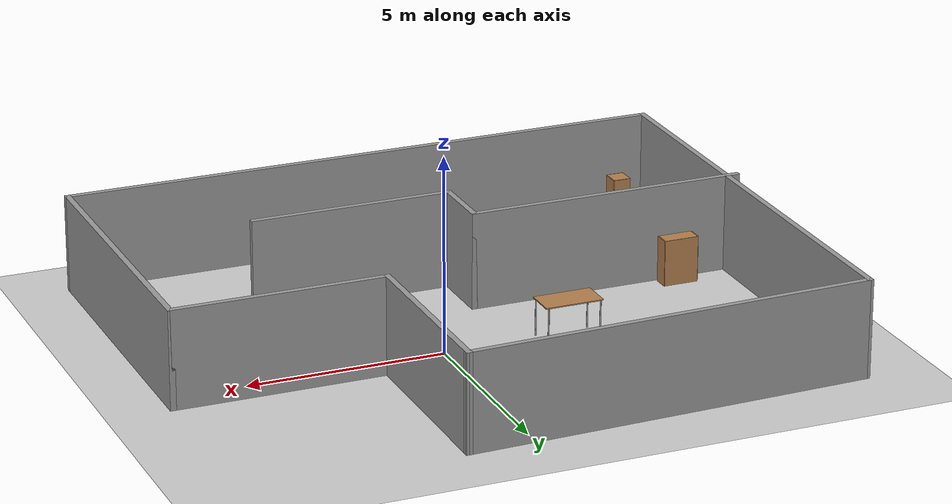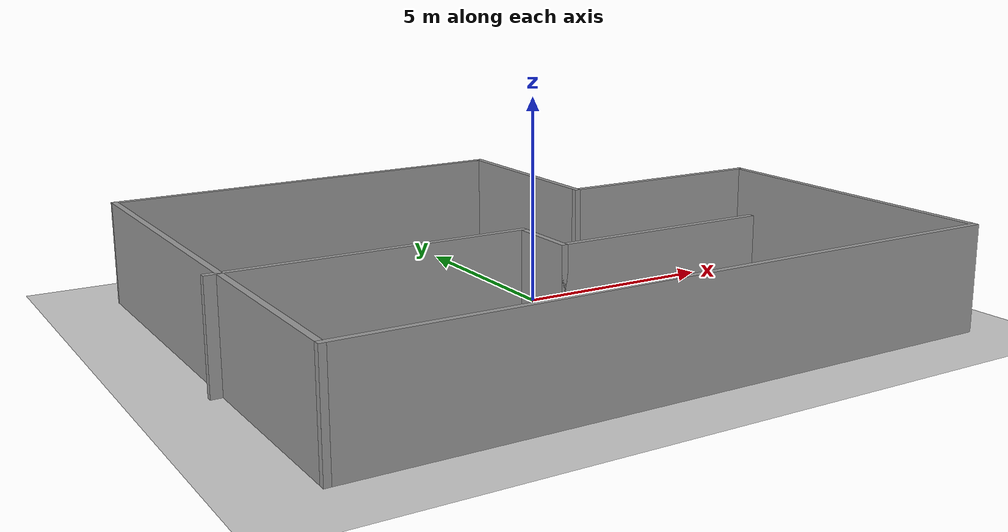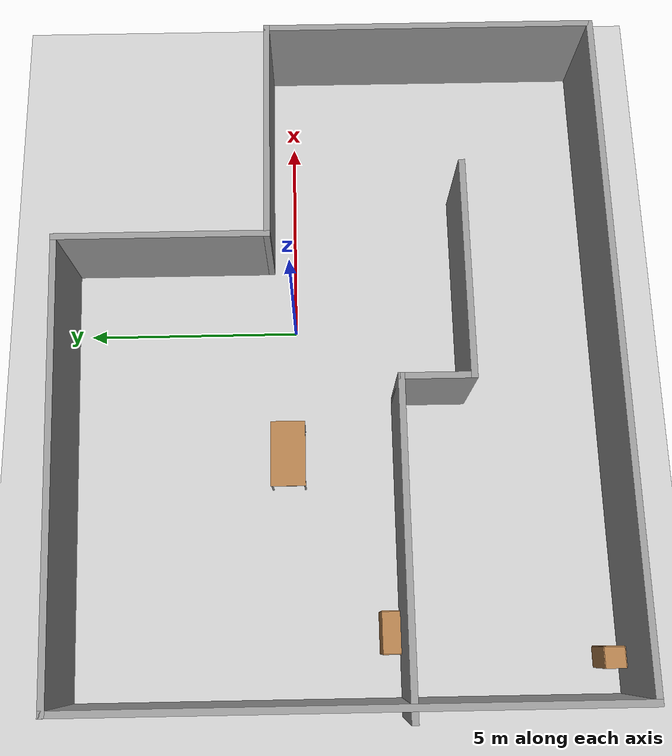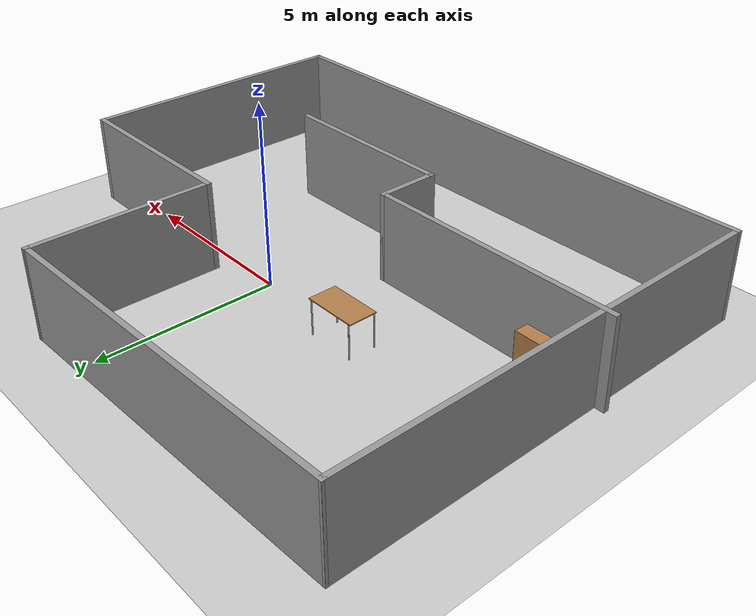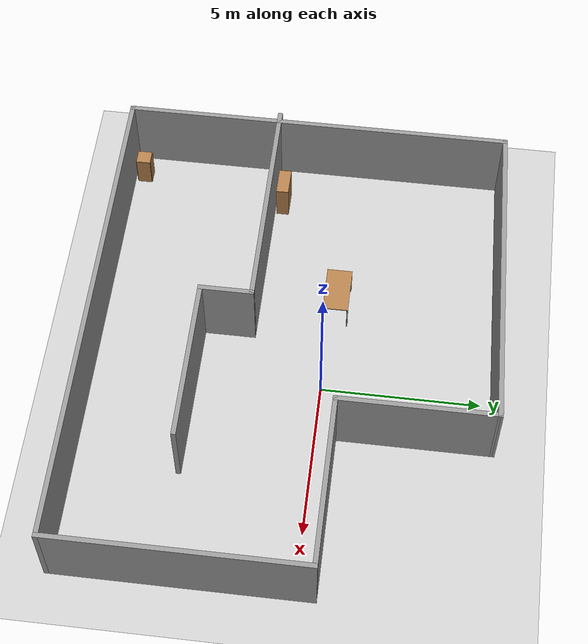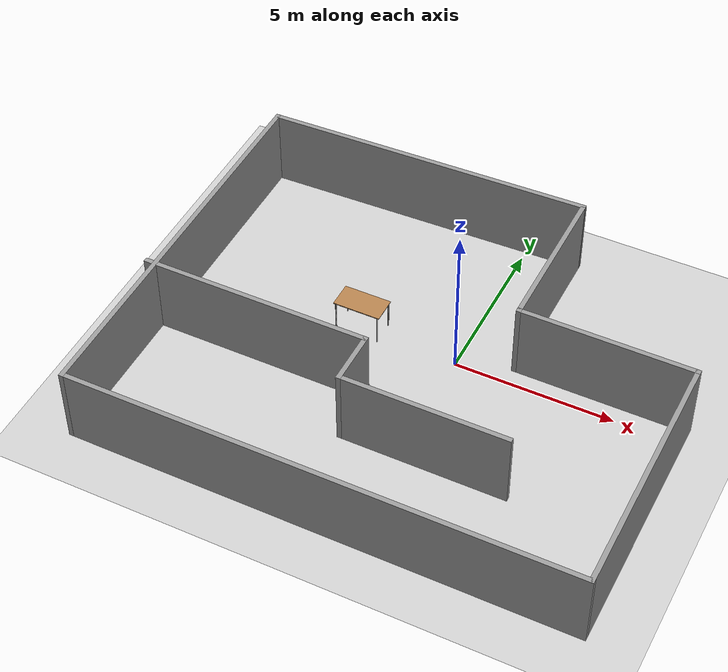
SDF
<sdf version="1.7">
 <world name="default">
  <light name="sun" type="directional">
   <pose>0 0 10 0 -0 0</pose>
   <diffuse>0.8 0.8 0.8 1</diffuse>
   <specular>0.2 0.2 0.2 1</specular>
   <attenuation>
    <range>1000</range>
    <constant>0.9</constant>
    <linear>0.01</linear>
    <quadratic>0.001</quadratic>
   </attenuation>
   <direction>-0.5 0.1 -0.9</direction>
   <spot><inner_angle>0</inner_angle><outer_angle>0</outer_angle><falloff>0</falloff></spot>
  </light>
  <model name="ground_plane">
   <static>1</static>
   <link name="link">
    <collision name="collision">
     <geometry><plane><normal>0 0 1</normal><size>100 100</size></plane></geometry>
     <surface><friction><ode><mu>100</mu><mu2>50</mu2></ode></friction></surface>
    </collision>
    <visual name="visual">
     <cast_shadows>0</cast_shadows>
     <geometry><plane><normal>0 0 1</normal><size>100 100</size></plane></geometry>
     <material>
      <script><uri>file://media/materials/scripts/gazebo.material</uri><name>Gazebo/Grey</name></script>
     </material>
    </visual>
   </link>
  </model>
  <gravity>0 0 -9.8</gravity>
  <magnetic_field>6e-06 2.3e-05 -4.2e-05</magnetic_field>
  <atmosphere type="adiabatic"/>
  <physics type="ode">
   <max_step_size>0.001</max_step_size>
   <real_time_factor>1</real_time_factor>
   <real_time_update_rate>1000</real_time_update_rate>
  </physics>
  <scene><ambient>0.4 0.4 0.4 1</ambient><background>0.7 0.7 0.7 1</background><shadows>1</shadows></scene>
  <audio><device>default</device></audio>
  <spherical_coordinates>
   <surface_model>EARTH_WGS84</surface_model>
   <latitude_deg>0</latitude_deg>
   <longitude_deg>0</longitude_deg>
   <elevation>0</elevation>
   <heading_deg>0</heading_deg>
  </spherical_coordinates>
  <model name="editor2">
   <pose>-0.920557 -0.904353 0 0 -0 0</pose>
   <link name="Wall_1">
    <collision name="Wall_1_Collision">
     <geometry><box><size>7.98249 0.15 2.5</size></box></geometry>
     <pose>0 0 1.25 0 -0 0</pose>
    </collision>
    <visual name="Wall_1_Visual">
     <pose>0 0 1.25 0 -0 0</pose>
     <geometry><box><size>7.98249 0.15 2.5</size></box></geometry>
     <material>
      <script><uri>file://media/materials/scripts/gazebo.material</uri><name>Gazebo/Grey</name></script>
      <ambient>1 1 1 1</ambient>
     </material>
     <meta><layer>0</layer></meta>
    </visual>
    <pose>7.92982 -2.4262 0 0 -0 -1.5708</pose>
   </link>
   <link name="Wall_10">
    <collision name="Wall_10_Collision">
     <geometry><box><size>1.75 0.15 2.5</size></box></geometry>
     <pose>0 0 1.25 0 -0 0</pose>
    </collision>
    <visual name="Wall_10_Visual">
     <pose>0 0 1.25 0 -0 0</pose>
     <geometry><box><size>1.75 0.15 2.5</size></box></geometry>
     <material>
      <script><uri>file://media/materials/scripts/gazebo.material</uri><name>Gazebo/Grey</name></script>
      <ambient>1 1 1 1</ambient>
     </material>
     <meta><layer>0</layer></meta>
    </visual>
    <pose>-0.82982 -2.24585 0 0 -0 -1.5708</pose>
   </link>
   <link name="Wall_11">
    <collision name="Wall_11_Collision">
     <geometry><box><size>5.25 0.15 2.5</size></box></geometry>
     <pose>0 0 1.25 0 -0 0</pose>
    </collision>
    <visual name="Wall_11_Visual">
     <pose>0 0 1.25 0 -0 0</pose>
     <geometry><box><size>5.25 0.15 2.5</size></box></geometry>
     <material>
      <script><uri>file://media/materials/scripts/gazebo.material</uri><name>Gazebo/Grey</name></script>
      <ambient>1 1 1 1</ambient>
     </material>
     <meta><layer>0</layer></meta>
    </visual>
    <pose>1.72018 -3.04585 0 0 -0 0</pose>
   </link>
   <link name="Wall_2">
    <collision name="Wall_2_Collision">
     <geometry><box><size>15.75 0.15 2.5</size></box></geometry>
     <pose>0 0 1.25 0 -0 0</pose>
    </collision>
    <visual name="Wall_2_Visual">
     <pose>0 0 1.25 0 -0 0</pose>
     <geometry><box><size>15.75 0.15 2.5</size></box></geometry>
     <material>
      <script><uri>file://media/materials/scripts/gazebo.material</uri><name>Gazebo/Grey</name></script>
      <ambient>1 1 1 1</ambient>
     </material>
     <meta><layer>0</layer></meta>
    </visual>
    <pose>0.12982 -6.34244 0 0 -0 3.14159</pose>
   </link>
   <link name="Wall_3">
    <collision name="Wall_3_Collision">
     <geometry><box><size>12.5 0.15 2.5</size></box></geometry>
     <pose>0 0 1.25 0 -0 0</pose>
    </collision>
    <visual name="Wall_3_Visual">
     <pose>0 0 1.25 0 -0 0</pose>
     <geometry><box><size>12.5 0.15 2.5</size></box></geometry>
     <material>
      <script><uri>file://media/materials/scripts/gazebo.material</uri><name>Gazebo/Grey</name></script>
      <ambient>1 1 1 1</ambient>
     </material>
     <meta><layer>0</layer></meta>
    </visual>
    <pose>-7.67018 -0.167439 0 0 -0 1.5708</pose>
   </link>
   <link name="Wall_5">
    <collision name="Wall_5_Collision">
     <geometry><box><size>5.5 0.15 2.5</size></box></geometry>
     <pose>0 0 1.25 0 -0 0</pose>
    </collision>
    <visual name="Wall_5_Visual">
     <pose>0 0 1.25 0 -0 0</pose>
     <geometry><box><size>5.5 0.15 2.5</size></box></geometry>
     <material>
      <script><uri>file://media/materials/scripts/gazebo.material</uri><name>Gazebo/Grey</name></script>
      <ambient>1 1 1 1</ambient>
     </material>
     <meta><layer>0</layer></meta>
    </visual>
    <pose>5.25482 1.49005 0 0 -0 3.14159</pose>
   </link>
   <link name="Wall_6">
    <collision name="Wall_6_Collision">
     <geometry><box><size>5 0.15 2.5</size></box></geometry>
     <pose>0 0 1.25 0 -0 0</pose>
    </collision>
    <visual name="Wall_6_Visual">
     <pose>0 0 1.25 0 -0 0</pose>
     <geometry><box><size>5 0.15 2.5</size></box></geometry>
     <material>
      <script><uri>file://media/materials/scripts/gazebo.material</uri><name>Gazebo/Grey</name></script>
      <ambient>1 1 1 1</ambient>
     </material>
     <meta><layer>0</layer></meta>
    </visual>
    <pose>2.57982 3.91505 0 0 -0 1.5708</pose>
   </link>
   <link name="Wall_7">
    <collision name="Wall_7_Collision">
     <geometry><box><size>10.4054 0.15 2.5</size></box></geometry>
     <pose>0 0 1.25 0 -0 0</pose>
    </collision>
    <visual name="Wall_7_Visual">
     <pose>0 0 1.25 0 -0 0</pose>
     <geometry><box><size>10.4054 0.15 2.5</size></box></geometry>
     <material>
      <script><uri>file://media/materials/scripts/gazebo.material</uri><name>Gazebo/Grey</name></script>
      <ambient>1 1 1 1</ambient>
     </material>
     <meta><layer>0</layer></meta>
    </visual>
    <pose>-2.54518 6.1738 0 0 -0 -3.10917</pose>
   </link>
   <link name="Wall_9">
    <collision name="Wall_9_Collision">
     <geometry><box><size>7.25 0.15 2.5</size></box></geometry>
     <pose>0 0 1.25 0 -0 0</pose>
    </collision>
    <visual name="Wall_9_Visual">
     <pose>0 0 1.25 0 -0 0</pose>
     <geometry><box><size>7.25 0.15 2.5</size></box></geometry>
     <material>
      <script><uri>file://media/materials/scripts/gazebo.material</uri><name>Gazebo/Grey</name></script>
      <ambient>1 1 1 1</ambient>
     </material>
     <meta><layer>0</layer></meta>
    </visual>
    <pose>-4.37982 -1.44585 0 0 -0 0</pose>
   </link>
   <static>1</static>
  </model>
  <model name="bookshelf">
   <static>1</static>
   <link name="link">
    <inertial><mass>1</mass></inertial>
    <collision name="back">
     <pose>0 0.005 0.6 0 -0 0</pose>
     <geometry><box><size>0.9 0.01 1.2</size></box></geometry>
    </collision>
    <visual name="visual1">
     <pose>0 0.005 0.6 0 -0 0</pose>
     <geometry><box><size>0.9 0.01 1.2</size></box></geometry>
     <material>
      <script><uri>file://media/materials/scripts/gazebo.material</uri><name>Gazebo/Wood</name></script>
     </material>
    </visual>
    <collision name="left_side">
     <pose>0.45 -0.195 0.6 0 -0 0</pose>
     <geometry><box><size>0.02 0.4 1.2</size></box></geometry>
    </collision>
    <visual name="visual2">
     <pose>0.45 -0.195 0.6 0 -0 0</pose>
     <geometry><box><size>0.02 0.4 1.2</size></box></geometry>
     <material>
      <script><uri>file://media/materials/scripts/gazebo.material</uri><name>Gazebo/Wood</name></script>
     </material>
    </visual>
    <collision name="right_side">
     <pose>-0.45 -0.195 0.6 0 -0 0</pose>
     <geometry><box><size>0.02 0.4 1.2</size></box></geometry>
    </collision>
    <visual name="visual3">
     <pose>-0.45 -0.195 0.6 0 -0 0</pose>
     <geometry><box><size>0.02 0.4 1.2</size></box></geometry>
     <material>
      <script><uri>file://media/materials/scripts/gazebo.material</uri><name>Gazebo/Wood</name></script>
     </material>
    </visual>
    <collision name="bottom">
     <pose>0 -0.195 0.03 0 -0 0</pose>
     <geometry><box><size>0.88 0.4 0.06</size></box></geometry>
    </collision>
    <visual name="visual4">
     <pose>0 -0.195 0.03 0 -0 0</pose>
     <geometry><box><size>0.88 0.4 0.06</size></box></geometry>
     <material>
      <script><uri>file://media/materials/scripts/gazebo.material</uri><name>Gazebo/Wood</name></script>
     </material>
    </visual>
    <collision name="top">
     <pose>0 -0.195 1.19 0 -0 0</pose>
     <geometry><box><size>0.88 0.4 0.02</size></box></geometry>
    </collision>
    <visual name="visual5">
     <pose>0 -0.195 1.19 0 -0 0</pose>
     <geometry><box><size>0.88 0.4 0.02</size></box></geometry>
     <material>
      <script><uri>file://media/materials/scripts/gazebo.material</uri><name>Gazebo/Wood</name></script>
     </material>
    </visual>
    <collision name="low_shelf">
     <pose>0 -0.195 0.43 0 -0 0</pose>
     <geometry><box><size>0.88 0.4 0.02</size></box></geometry>
    </collision>
    <visual name="visual6">
     <pose>0 -0.195 0.43 0 -0 0</pose>
     <geometry><box><size>0.88 0.4 0.02</size></box></geometry>
     <material>
      <script><uri>file://media/materials/scripts/gazebo.material</uri><name>Gazebo/Wood</name></script>
     </material>
    </visual>
    <collision name="high_shelf">
     <pose>0 -0.195 0.8 0 -0 0</pose>
     <geometry><box><size>0.88 0.4 0.02</size></box></geometry>
    </collision>
    <visual name="visual7">
     <pose>0 -0.195 0.8 0 -0 0</pose>
     <geometry><box><size>0.88 0.4 0.02</size></box></geometry>
     <material>
      <script><uri>file://media/materials/scripts/gazebo.material</uri><name>Gazebo/Wood</name></script>
     </material>
    </visual>
   </link>
   <pose>-7.12536 -1.82696 0 0 -0 0</pose>
  </model>
  <model name="cabinet">
   <static>1</static>
   <link name="cabinet_bottom_plate">
    <inertial>
     <pose>0 0 -1 0 -0 0</pose>
     <inertia><ixx>2.05</ixx><ixy>0</ixy><ixz>0</ixz><iyy>2.05</iyy><iyz>0</iyz><izz>2.05</izz></inertia>
     <mass>25</mass>
    </inertial>
    <collision name="cabinet_bottom_plate_geom">
     <pose>0 0 0.01 0 -0 0</pose>
     <geometry><box><size>0.45 0.45 0.02</size></box></geometry>
    </collision>
    <visual name="cabinet_bottom_plate_geom_visual">
     <pose>0 0 0.01 0 -0 0</pose>
     <geometry><box><size>0.45 0.45 0.02</size></box></geometry>
     <material>
      <script><uri>file://media/materials/scripts/gazebo.material</uri><name>Gazebo/Wood</name></script>
     </material>
    </visual>
    <collision name="cabinet_bottom_plate_geom_cabinet_back_plate">
     <pose>0.235 0 0.51 0 -0 0</pose>
     <geometry><box><size>0.02 0.45 1.02</size></box></geometry>
    </collision>
    <visual name="cabinet_bottom_plate_geom_cabinet_back_plate_visual">
     <pose>0.235 0 0.51 0 -0 0</pose>
     <geometry><box><size>0.02 0.45 1.02</size></box></geometry>
     <material>
      <script><uri>file://media/materials/scripts/gazebo.material</uri><name>Gazebo/Wood</name></script>
     </material>
    </visual>
    <collision name="cabinet_bottom_plate_geom_cabinet_left_plate">
     <pose>0 0.235 0.51 0 -0 0</pose>
     <geometry><box><size>0.45 0.02 1.02</size></box></geometry>
    </collision>
    <visual name="cabinet_bottom_plate_geom_cabinet_left_plate_visual">
     <pose>0 0.235 0.51 0 -0 0</pose>
     <geometry><box><size>0.45 0.02 1.02</size></box></geometry>
     <material>
      <script><uri>file://media/materials/scripts/gazebo.material</uri><name>Gazebo/Wood</name></script>
     </material>
    </visual>
    <collision name="cabinet_bottom_plate_geom_cabinet_middle_plate">
     <pose>0 0 0.51 0 -0 0</pose>
     <geometry><box><size>0.45 0.45 0.02</size></box></geometry>
    </collision>
    <visual name="cabinet_bottom_plate_geom_cabinet_middle_plate_visual">
     <pose>0 0 0.51 0 -0 0</pose>
     <geometry><box><size>0.45 0.45 0.02</size></box></geometry>
     <material>
      <script><uri>file://media/materials/scripts/gazebo.material</uri><name>Gazebo/Wood</name></script>
     </material>
    </visual>
    <collision name="cabinet_bottom_plate_geom_cabinet_right_plate">
     <pose>0 -0.235 0.51 0 -0 0</pose>
     <geometry><box><size>0.45 0.02 1.02</size></box></geometry>
    </collision>
    <visual name="cabinet_bottom_plate_geom_cabinet_right_plate_visual">
     <pose>0 -0.235 0.51 0 -0 0</pose>
     <geometry><box><size>0.45 0.02 1.02</size></box></geometry>
     <material>
      <script><uri>file://media/materials/scripts/gazebo.material</uri><name>Gazebo/Wood</name></script>
     </material>
    </visual>
    <collision name="cabinet_bottom_plate_geom_cabinet_top_plate">
     <pose>0 0 1.01 0 -0 0</pose>
     <geometry><box><size>0.45 0.45 0.02</size></box></geometry>
    </collision>
    <visual name="cabinet_bottom_plate_geom_cabinet_top_plate_visual">
     <pose>0 0 1.01 0 -0 0</pose>
     <geometry><box><size>0.45 0.45 0.02</size></box></geometry>
     <material>
      <script><uri>file://media/materials/scripts/gazebo.material</uri><name>Gazebo/Wood</name></script>
     </material>
    </visual>
   </link>
   <pose>-7.73299 -6.844 0 0 -0 0</pose>
  </model>
  <model name="table">
   <static>1</static>
   <link name="link">
    <collision name="surface">
     <pose>0 0 1 0 -0 0</pose>
     <geometry><box><size>1.5 0.8 0.03</size></box></geometry>
     <surface><friction><ode><mu>0.6</mu><mu2>0.6</mu2></ode></friction></surface>
    </collision>
    <visual name="visual1">
     <pose>0 0 1 0 -0 0</pose>
     <geometry><box><size>1.5 0.8 0.03</size></box></geometry>
     <material>
      <script><uri>file://media/materials/scripts/gazebo.material</uri><name>Gazebo/Wood</name></script>
     </material>
    </visual>
    <collision name="front_left_leg">
     <pose>0.68 0.38 0.5 0 -0 0</pose>
     <geometry><cylinder><radius>0.02</radius><length>1</length></cylinder></geometry>
    </collision>
    <visual name="front_left_leg">
     <pose>0.68 0.38 0.5 0 -0 0</pose>
     <geometry><cylinder><radius>0.02</radius><length>1</length></cylinder></geometry>
     <material>
      <script><uri>file://media/materials/scripts/gazebo.material</uri><name>Gazebo/Grey</name></script>
     </material>
    </visual>
    <collision name="front_right_leg">
     <pose>0.68 -0.38 0.5 0 -0 0</pose>
     <geometry><cylinder><radius>0.02</radius><length>1</length></cylinder></geometry>
    </collision>
    <visual name="front_right_leg">
     <pose>0.68 -0.38 0.5 0 -0 0</pose>
     <geometry><cylinder><radius>0.02</radius><length>1</length></cylinder></geometry>
     <material>
      <script><uri>file://media/materials/scripts/gazebo.material</uri><name>Gazebo/Grey</name></script>
     </material>
    </visual>
    <collision name="back_right_leg">
     <pose>-0.68 -0.38 0.5 0 -0 0</pose>
     <geometry><cylinder><radius>0.02</radius><length>1</length></cylinder></geometry>
    </collision>
    <visual name="back_right_leg">
     <pose>-0.68 -0.38 0.5 0 -0 0</pose>
     <geometry><cylinder><radius>0.02</radius><length>1</length></cylinder></geometry>
     <material>
      <script><uri>file://media/materials/scripts/gazebo.material</uri><name>Gazebo/Grey</name></script>
     </material>
    </visual>
    <collision name="back_left_leg">
     <pose>-0.68 0.38 0.5 0 -0 0</pose>
     <geometry><cylinder><radius>0.02</radius><length>1</length></cylinder></geometry>
    </collision>
    <visual name="back_left_leg">
     <pose>-0.68 0.38 0.5 0 -0 0</pose>
     <geometry><cylinder><radius>0.02</radius><length>1</length></cylinder></geometry>
     <material>
      <script><uri>file://media/materials/scripts/gazebo.material</uri><name>Gazebo/Grey</name></script>
     </material>
    </visual>
   </link>
   <pose>-3.14132 0.189965 0 0 -0 0</pose>
  </model>
 </world>
</sdf>
